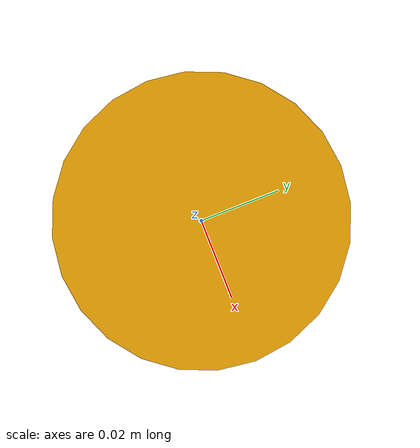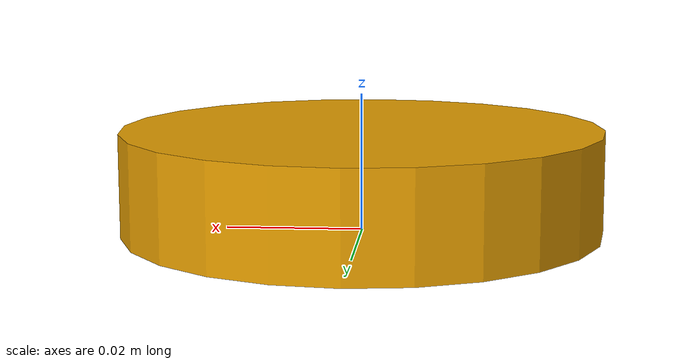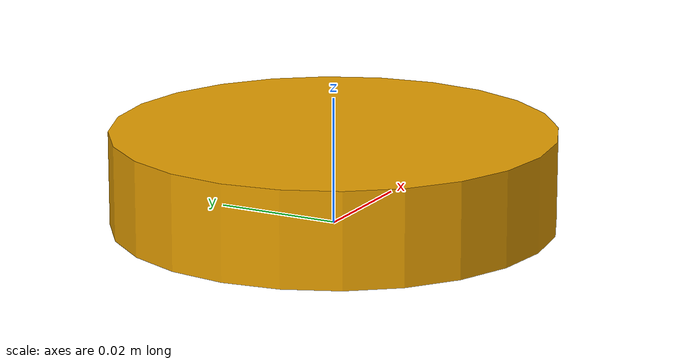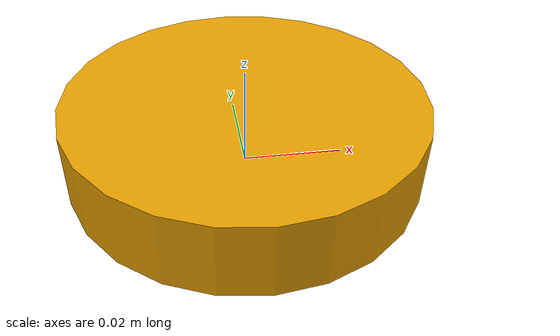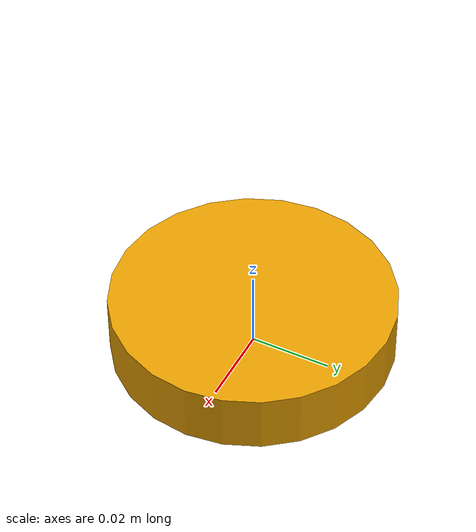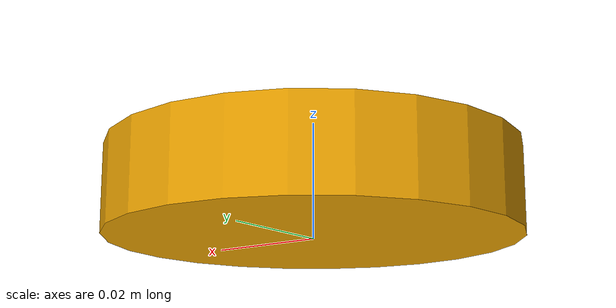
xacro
<?xml version="1.0"?>
<robot xmlns:xacro="http://www.ros.org/wiki/xacro" name="cylinder">

	<xacro:macro name="cylinder_inertia_def" params="radius length mass">
	<inertia ixx="${mass * (3 * radius * radius + length * length) / 12}"
			 iyy="${mass * (3 * radius * radius + length * length) / 12}"
			 izz="${mass * radius* radius / 2}"
			 ixy="0" iyz="0" ixz="0"/>
	</xacro:macro>

	<link name="cylinder">
		<inertial>

			<!-- cylindrical shell : Izz=m*r^2; Ixx=Iyy=1/12*m*(6*r^2+h^2) -->
			<!-- solid cylinder : Izz=(m*r^2)/2; Ixx=Iyy=1/12*m*(3*r^2+h^2) -->

				<mass value="1.0"/>
				<origin xyz="0 0 0.0075"/>
				<xacro:cylinder_inertia_def radius="0.035" length="0.015" mass="1.0" />
		</inertial>
		<visual>
			<origin xyz="0 0 0.0075" rpy="0 0 0"/>
			<geometry>
				<cylinder length="0.015" radius="0.035"/>
			</geometry>
		</visual>
		<collision>
			<origin xyz="0 0 0.0075" rpy="0 0 0"/>
			<geometry>
				<cylinder length="0.015" radius="0.035"/>
			</geometry>
		</collision>
	</link>

	<gazebo reference="cylinder">
		  <selfCollide>true</selfCollide>
		 <maxContacts>100</maxContacts>
	     <gravity>true</gravity>

		<mu1>0.6</mu1>
	     <mu2>0.6</mu2>
	        <fdir1>1 0 0</fdir1>
         <maxVel>1.0</maxVel>

		<kp>10000000.0</kp>
	  <kd>100.0</kd>
	  <minDepth>0.00</minDepth>
	 </gazebo>

</robot>
